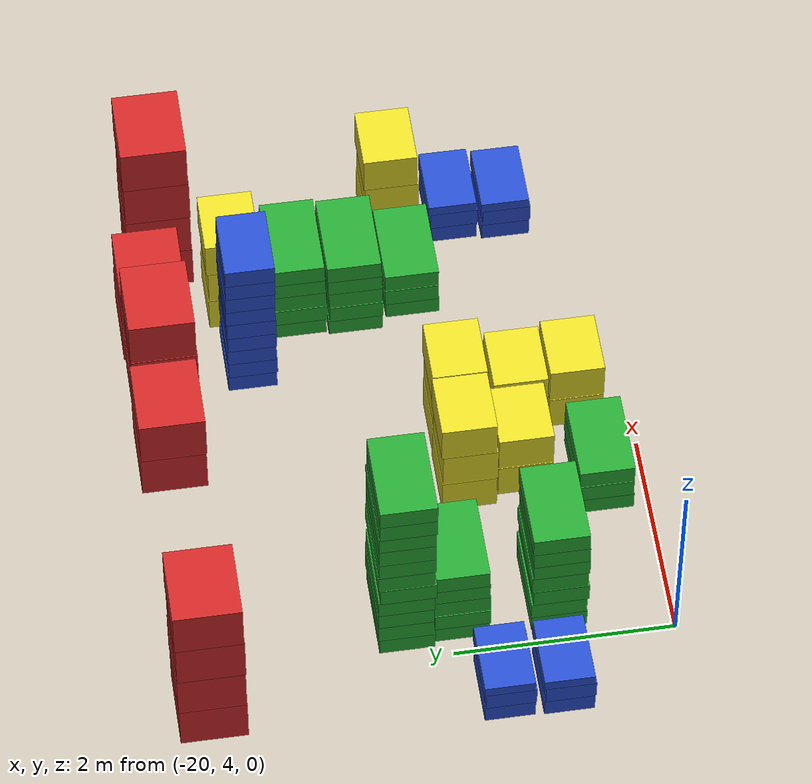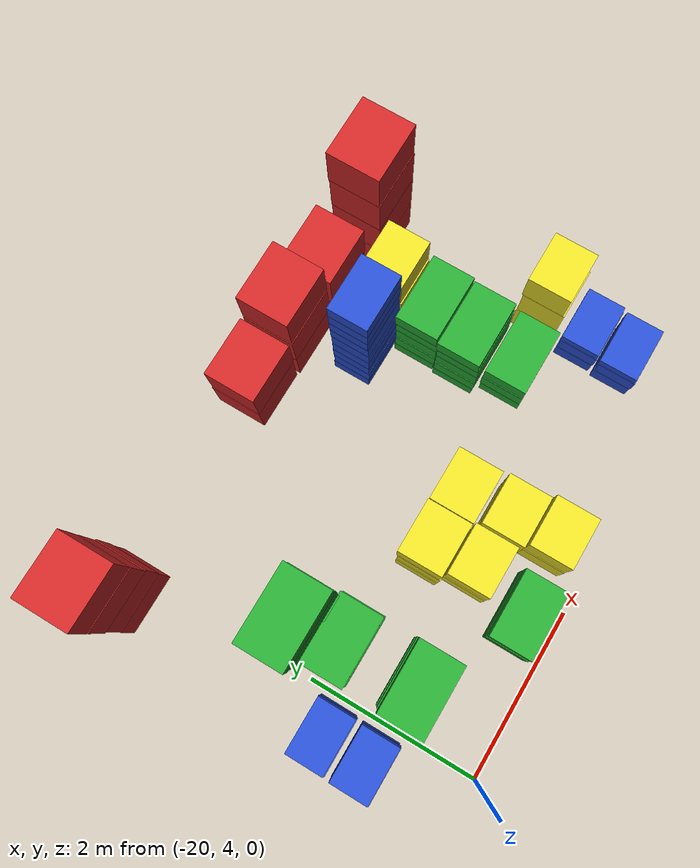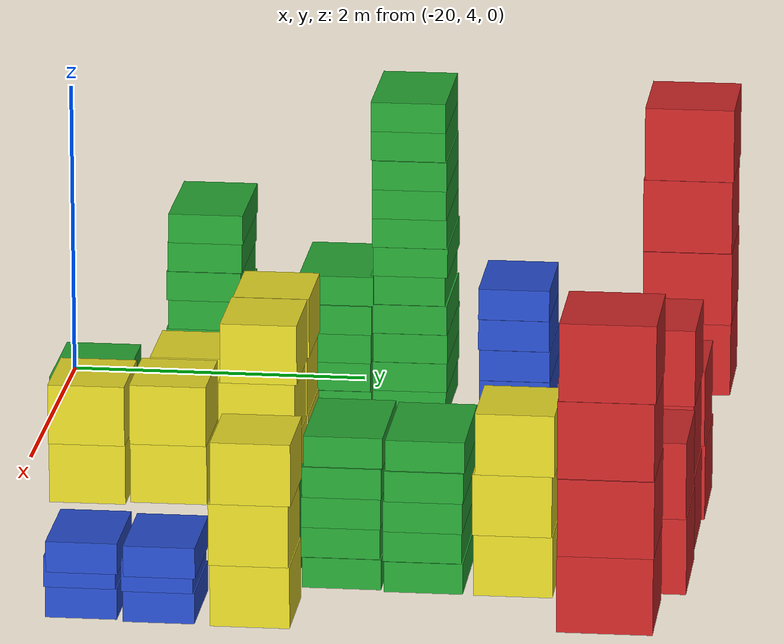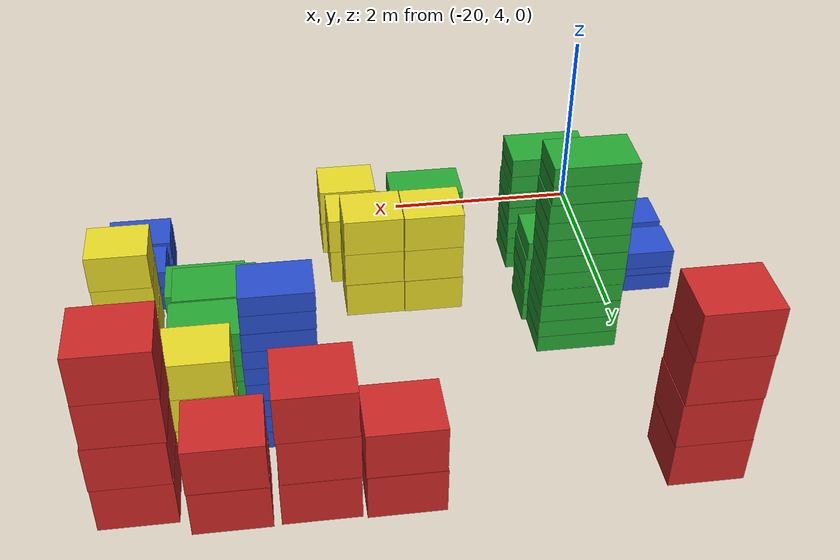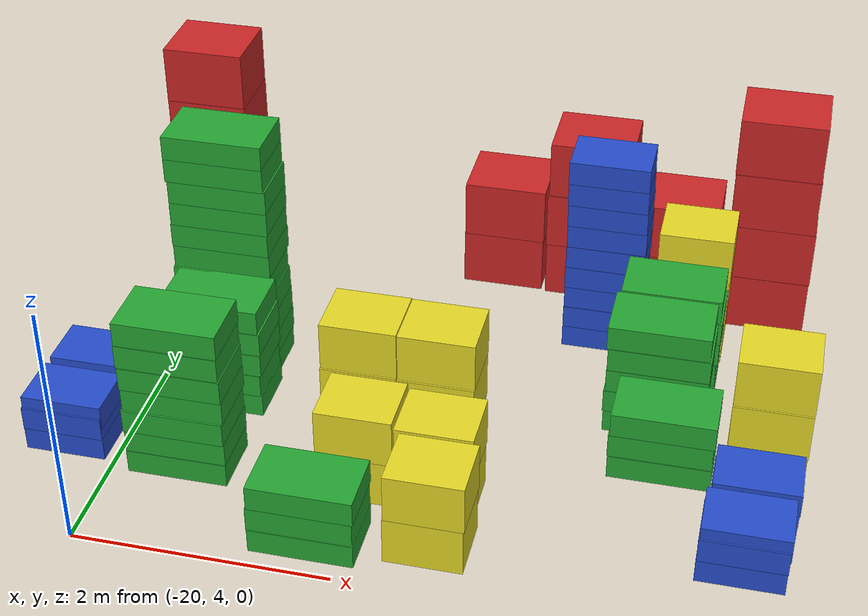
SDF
<sdf version="1.6">
 <world name="default">
  <include><uri>model://sun</uri></include>
  <model name="baggage_B_x3_5">
   <model name="baggage_B_0">
    <static>1</static>
    <link name="link">
     <collision name="collision"><geometry><box><size>0.65 0.45 0.2</size></box></geometry></collision>
     <visual name="visual">
      <geometry><box><size>0.65 0.45 0.2</size></box></geometry>
      <material>
       <script><uri>file://media/materials/scripts/gazebo.material</uri><name>Gazebo/Blue</name></script>
      </material>
     </visual>
    </link>
    <pose>0 0 0.1 0 -0 0</pose>
   </model>
   <model name="baggage_B_1">
    <static>1</static>
    <link name="link">
     <collision name="collision"><geometry><box><size>0.65 0.45 0.2</size></box></geometry></collision>
     <visual name="visual">
      <geometry><box><size>0.65 0.45 0.2</size></box></geometry>
      <material>
       <script><uri>file://media/materials/scripts/gazebo.material</uri><name>Gazebo/Blue</name></script>
      </material>
     </visual>
    </link>
    <pose>0.0028 -0.0086 0.3 0 -0 0</pose>
   </model>
   <model name="baggage_B_2">
    <static>1</static>
    <link name="link">
     <collision name="collision"><geometry><box><size>0.65 0.45 0.2</size></box></geometry></collision>
     <visual name="visual">
      <geometry><box><size>0.65 0.45 0.2</size></box></geometry>
      <material>
       <script><uri>file://media/materials/scripts/gazebo.material</uri><name>Gazebo/Blue</name></script>
      </material>
     </visual>
    </link>
    <pose>0.0092 0.006 0.4 0 -0 0</pose>
   </model>
   <pose>-15.1399 4.80526 0 0 -0 0</pose>
  </model>
  <model name="baggage_B_x3_6">
   <model name="baggage_B_0">
    <static>1</static>
    <link name="link">
     <collision name="collision"><geometry><box><size>0.65 0.45 0.2</size></box></geometry></collision>
     <visual name="visual">
      <geometry><box><size>0.65 0.45 0.2</size></box></geometry>
      <material>
       <script><uri>file://media/materials/scripts/gazebo.material</uri><name>Gazebo/Blue</name></script>
      </material>
     </visual>
    </link>
    <pose>0 0 0.1 0 -0 0</pose>
   </model>
   <model name="baggage_B_1">
    <static>1</static>
    <link name="link">
     <collision name="collision"><geometry><box><size>0.65 0.45 0.2</size></box></geometry></collision>
     <visual name="visual">
      <geometry><box><size>0.65 0.45 0.2</size></box></geometry>
      <material>
       <script><uri>file://media/materials/scripts/gazebo.material</uri><name>Gazebo/Blue</name></script>
      </material>
     </visual>
    </link>
    <pose>0.0028 -0.0086 0.3 0 -0 0</pose>
   </model>
   <model name="baggage_B_2">
    <static>1</static>
    <link name="link">
     <collision name="collision"><geometry><box><size>0.65 0.45 0.2</size></box></geometry></collision>
     <visual name="visual">
      <geometry><box><size>0.65 0.45 0.2</size></box></geometry>
      <material>
       <script><uri>file://media/materials/scripts/gazebo.material</uri><name>Gazebo/Blue</name></script>
      </material>
     </visual>
    </link>
    <pose>0.0092 0.006 0.4 0 -0 0</pose>
   </model>
   <pose>-15.1067 5.2972 0 0 -0 0</pose>
  </model>
  <model name="baggage_D_x3_3">
   <model name="baggage_D_0">
    <static>1</static>
    <link name="link">
     <collision name="collision"><geometry><box><size>0.8 0.5 0.2</size></box></geometry></collision>
     <visual name="visual">
      <geometry><box><size>0.8 0.5 0.2</size></box></geometry>
      <material>
       <script><uri>file://media/materials/scripts/gazebo.material</uri><name>Gazebo/Green</name></script>
      </material>
     </visual>
    </link>
    <pose>0 0 0.1 0 -0 0</pose>
   </model>
   <model name="baggage_D_1">
    <static>1</static>
    <link name="link">
     <collision name="collision"><geometry><box><size>0.8 0.5 0.2</size></box></geometry></collision>
     <visual name="visual">
      <geometry><box><size>0.8 0.5 0.2</size></box></geometry>
      <material>
       <script><uri>file://media/materials/scripts/gazebo.material</uri><name>Gazebo/Green</name></script>
      </material>
     </visual>
    </link>
    <pose>-0.0056 0.0083 0.3 0 -0 0</pose>
   </model>
   <model name="baggage_D_2">
    <static>1</static>
    <link name="link">
     <collision name="collision"><geometry><box><size>0.8 0.5 0.2</size></box></geometry></collision>
     <visual name="visual">
      <geometry><box><size>0.8 0.5 0.2</size></box></geometry>
      <material>
       <script><uri>file://media/materials/scripts/gazebo.material</uri><name>Gazebo/Green</name></script>
      </material>
     </visual>
    </link>
    <pose>0.0053 0.0057 0.5 0 -0 0</pose>
   </model>
   <pose>-15.8439 5.80478 0 0 -0 0</pose>
  </model>
  <model name="baggage_D_x5_2">
   <model name="baggage_D_0">
    <static>1</static>
    <link name="link">
     <collision name="collision"><geometry><box><size>0.8 0.5 0.2</size></box></geometry></collision>
     <visual name="visual">
      <geometry><box><size>0.8 0.5 0.2</size></box></geometry>
      <material>
       <script><uri>file://media/materials/scripts/gazebo.material</uri><name>Gazebo/Green</name></script>
      </material>
     </visual>
    </link>
    <pose>0 0 0.1 0 -0 0</pose>
   </model>
   <model name="baggage_D_1">
    <static>1</static>
    <link name="link">
     <collision name="collision"><geometry><box><size>0.8 0.5 0.2</size></box></geometry></collision>
     <visual name="visual">
      <geometry><box><size>0.8 0.5 0.2</size></box></geometry>
      <material>
       <script><uri>file://media/materials/scripts/gazebo.material</uri><name>Gazebo/Green</name></script>
      </material>
     </visual>
    </link>
    <pose>-0.0065 -0.0092 0.3 0 -0 0</pose>
   </model>
   <model name="baggage_D_2">
    <static>1</static>
    <link name="link">
     <collision name="collision"><geometry><box><size>0.8 0.5 0.2</size></box></geometry></collision>
     <visual name="visual">
      <geometry><box><size>0.8 0.5 0.2</size></box></geometry>
      <material>
       <script><uri>file://media/materials/scripts/gazebo.material</uri><name>Gazebo/Green</name></script>
      </material>
     </visual>
    </link>
    <pose>0.005 -0.0052 0.5 0 -0 0</pose>
   </model>
   <model name="baggage_D_3">
    <static>1</static>
    <link name="link">
     <collision name="collision"><geometry><box><size>0.8 0.5 0.2</size></box></geometry></collision>
     <visual name="visual">
      <geometry><box><size>0.8 0.5 0.2</size></box></geometry>
      <material>
       <script><uri>file://media/materials/scripts/gazebo.material</uri><name>Gazebo/Green</name></script>
      </material>
     </visual>
    </link>
    <pose>0.0074 0.0002 0.7 0 -0 0</pose>
   </model>
   <model name="baggage_D_4">
    <static>1</static>
    <link name="link">
     <collision name="collision"><geometry><box><size>0.8 0.5 0.2</size></box></geometry></collision>
     <visual name="visual">
      <geometry><box><size>0.8 0.5 0.2</size></box></geometry>
      <material>
       <script><uri>file://media/materials/scripts/gazebo.material</uri><name>Gazebo/Green</name></script>
      </material>
     </visual>
    </link>
    <pose>-0.006 0.0081 0.9 0 -0 0</pose>
   </model>
   <pose>-15.9594 6.35522 0 0 -0 0</pose>
  </model>
  <model name="baggage_D_x5_3">
   <model name="baggage_D_0">
    <static>1</static>
    <link name="link">
     <collision name="collision"><geometry><box><size>0.8 0.5 0.2</size></box></geometry></collision>
     <visual name="visual">
      <geometry><box><size>0.8 0.5 0.2</size></box></geometry>
      <material>
       <script><uri>file://media/materials/scripts/gazebo.material</uri><name>Gazebo/Green</name></script>
      </material>
     </visual>
    </link>
    <pose>0 0 0.1 0 -0 0</pose>
   </model>
   <model name="baggage_D_1">
    <static>1</static>
    <link name="link">
     <collision name="collision"><geometry><box><size>0.8 0.5 0.2</size></box></geometry></collision>
     <visual name="visual">
      <geometry><box><size>0.8 0.5 0.2</size></box></geometry>
      <material>
       <script><uri>file://media/materials/scripts/gazebo.material</uri><name>Gazebo/Green</name></script>
      </material>
     </visual>
    </link>
    <pose>-0.0065 -0.0092 0.3 0 -0 0</pose>
   </model>
   <model name="baggage_D_2">
    <static>1</static>
    <link name="link">
     <collision name="collision"><geometry><box><size>0.8 0.5 0.2</size></box></geometry></collision>
     <visual name="visual">
      <geometry><box><size>0.8 0.5 0.2</size></box></geometry>
      <material>
       <script><uri>file://media/materials/scripts/gazebo.material</uri><name>Gazebo/Green</name></script>
      </material>
     </visual>
    </link>
    <pose>0.005 -0.0052 0.5 0 -0 0</pose>
   </model>
   <model name="baggage_D_3">
    <static>1</static>
    <link name="link">
     <collision name="collision"><geometry><box><size>0.8 0.5 0.2</size></box></geometry></collision>
     <visual name="visual">
      <geometry><box><size>0.8 0.5 0.2</size></box></geometry>
      <material>
       <script><uri>file://media/materials/scripts/gazebo.material</uri><name>Gazebo/Green</name></script>
      </material>
     </visual>
    </link>
    <pose>0.0074 0.0002 0.7 0 -0 0</pose>
   </model>
   <model name="baggage_D_4">
    <static>1</static>
    <link name="link">
     <collision name="collision"><geometry><box><size>0.8 0.5 0.2</size></box></geometry></collision>
     <visual name="visual">
      <geometry><box><size>0.8 0.5 0.2</size></box></geometry>
      <material>
       <script><uri>file://media/materials/scripts/gazebo.material</uri><name>Gazebo/Green</name></script>
      </material>
     </visual>
    </link>
    <pose>-0.006 0.0081 0.9 0 -0 0</pose>
   </model>
   <pose>-15.9296 6.87587 0 0 -0 0</pose>
  </model>
  <model name="baggage_C_x3_4">
   <model name="baggage_C_0">
    <static>1</static>
    <link name="link">
     <collision name="collision"><geometry><box><size>0.6 0.5 0.4</size></box></geometry></collision>
     <visual name="visual">
      <geometry><box><size>0.6 0.5 0.4</size></box></geometry>
      <material>
       <script><uri>file://media/materials/scripts/gazebo.material</uri><name>Gazebo/Yellow</name></script>
      </material>
     </visual>
    </link>
    <pose>0 0 0.2 0 -0 0</pose>
   </model>
   <model name="baggage_C_1">
    <static>1</static>
    <link name="link">
     <collision name="collision"><geometry><box><size>0.6 0.5 0.4</size></box></geometry></collision>
     <visual name="visual">
      <geometry><box><size>0.6 0.5 0.4</size></box></geometry>
      <material>
       <script><uri>file://media/materials/scripts/gazebo.material</uri><name>Gazebo/Yellow</name></script>
      </material>
     </visual>
    </link>
    <pose>0.0062 -0.0069 0.6 0 -0 0</pose>
   </model>
   <model name="baggage_C_2">
    <static>1</static>
    <link name="link">
     <collision name="collision"><geometry><box><size>0.6 0.5 0.4</size></box></geometry></collision>
     <visual name="visual">
      <geometry><box><size>0.6 0.5 0.4</size></box></geometry>
      <material>
       <script><uri>file://media/materials/scripts/gazebo.material</uri><name>Gazebo/Yellow</name></script>
      </material>
     </visual>
    </link>
    <pose>0.0089 0.0083 1 0 -0 0</pose>
   </model>
   <pose>-15.8229 7.44258 0 0 -0 0</pose>
  </model>
  <model name="baggage_C_x3_5">
   <model name="baggage_C_0">
    <static>1</static>
    <link name="link">
     <collision name="collision"><geometry><box><size>0.6 0.5 0.4</size></box></geometry></collision>
     <visual name="visual">
      <geometry><box><size>0.6 0.5 0.4</size></box></geometry>
      <material>
       <script><uri>file://media/materials/scripts/gazebo.material</uri><name>Gazebo/Yellow</name></script>
      </material>
     </visual>
    </link>
    <pose>0 0 0.2 0 -0 0</pose>
   </model>
   <model name="baggage_C_1">
    <static>1</static>
    <link name="link">
     <collision name="collision"><geometry><box><size>0.6 0.5 0.4</size></box></geometry></collision>
     <visual name="visual">
      <geometry><box><size>0.6 0.5 0.4</size></box></geometry>
      <material>
       <script><uri>file://media/materials/scripts/gazebo.material</uri><name>Gazebo/Yellow</name></script>
      </material>
     </visual>
    </link>
    <pose>0.0062 -0.0069 0.6 0 -0 0</pose>
   </model>
   <model name="baggage_C_2">
    <static>1</static>
    <link name="link">
     <collision name="collision"><geometry><box><size>0.6 0.5 0.4</size></box></geometry></collision>
     <visual name="visual">
      <geometry><box><size>0.6 0.5 0.4</size></box></geometry>
      <material>
       <script><uri>file://media/materials/scripts/gazebo.material</uri><name>Gazebo/Yellow</name></script>
      </material>
     </visual>
    </link>
    <pose>0.0089 0.0083 1 0 -0 0</pose>
   </model>
   <pose>-15.0595 5.8716 0 0 -0 0</pose>
  </model>
  <model name="baggage_A_x4_4">
   <model name="baggage_A_0">
    <static>1</static>
    <link name="link">
     <collision name="collision"><geometry><box><size>0.7 0.6 0.5</size></box></geometry></collision>
     <visual name="visual">
      <geometry><box><size>0.7 0.6 0.5</size></box></geometry>
      <material>
       <script><uri>file://media/materials/scripts/gazebo.material</uri><name>Gazebo/Red</name></script>
      </material>
     </visual>
    </link>
    <pose>0 0 0.25 0 -0 0</pose>
   </model>
   <model name="baggage_A_1">
    <static>1</static>
    <link name="link">
     <collision name="collision"><geometry><box><size>0.7 0.6 0.5</size></box></geometry></collision>
     <visual name="visual">
      <geometry><box><size>0.7 0.6 0.5</size></box></geometry>
      <material>
       <script><uri>file://media/materials/scripts/gazebo.material</uri><name>Gazebo/Red</name></script>
      </material>
     </visual>
    </link>
    <pose>0.0053 0.0033 0.75 0 -0 0</pose>
   </model>
   <model name="baggage_A_2">
    <static>1</static>
    <link name="link">
     <collision name="collision"><geometry><box><size>0.7 0.6 0.5</size></box></geometry></collision>
     <visual name="visual">
      <geometry><box><size>0.7 0.6 0.5</size></box></geometry>
      <material>
       <script><uri>file://media/materials/scripts/gazebo.material</uri><name>Gazebo/Red</name></script>
      </material>
     </visual>
    </link>
    <pose>-0.0056 -0.0003 1.25 0 -0 0</pose>
   </model>
   <model name="baggage_A_3">
    <static>1</static>
    <link name="link">
     <collision name="collision"><geometry><box><size>0.7 0.6 0.5</size></box></geometry></collision>
     <visual name="visual">
      <geometry><box><size>0.7 0.6 0.5</size></box></geometry>
      <material>
       <script><uri>file://media/materials/scripts/gazebo.material</uri><name>Gazebo/Red</name></script>
      </material>
     </visual>
    </link>
    <pose>-0.0098 0.0065 1.75 0 -0 0</pose>
   </model>
   <pose>-15.2258 8.07394 0 0 -0 0</pose>
  </model>
  <model name="baggage_D_x7_1">
   <model name="baggage_D_0">
    <static>1</static>
    <link name="link">
     <collision name="collision"><geometry><box><size>0.8 0.5 0.2</size></box></geometry></collision>
     <visual name="visual">
      <geometry><box><size>0.8 0.5 0.2</size></box></geometry>
      <material>
       <script><uri>file://media/materials/scripts/gazebo.material</uri><name>Gazebo/Green</name></script>
      </material>
     </visual>
    </link>
    <pose>0 0 0.1 0 -0 0</pose>
   </model>
   <model name="baggage_D_1">
    <static>1</static>
    <link name="link">
     <collision name="collision"><geometry><box><size>0.8 0.5 0.2</size></box></geometry></collision>
     <visual name="visual">
      <geometry><box><size>0.8 0.5 0.2</size></box></geometry>
      <material>
       <script><uri>file://media/materials/scripts/gazebo.material</uri><name>Gazebo/Green</name></script>
      </material>
     </visual>
    </link>
    <pose>0.0009 0.0063 0.3 0 -0 0</pose>
   </model>
   <model name="baggage_D_2">
    <static>1</static>
    <link name="link">
     <collision name="collision"><geometry><box><size>0.8 0.5 0.2</size></box></geometry></collision>
     <visual name="visual">
      <geometry><box><size>0.8 0.5 0.2</size></box></geometry>
      <material>
       <script><uri>file://media/materials/scripts/gazebo.material</uri><name>Gazebo/Green</name></script>
      </material>
     </visual>
    </link>
    <pose>0.0011 -0.0098 0.5 0 -0 0</pose>
   </model>
   <model name="baggage_D_3">
    <static>1</static>
    <link name="link">
     <collision name="collision"><geometry><box><size>0.8 0.5 0.2</size></box></geometry></collision>
     <visual name="visual">
      <geometry><box><size>0.8 0.5 0.2</size></box></geometry>
      <material>
       <script><uri>file://media/materials/scripts/gazebo.material</uri><name>Gazebo/Green</name></script>
      </material>
     </visual>
    </link>
    <pose>0.0089 0.0055 0.7 0 -0 0</pose>
   </model>
   <model name="baggage_D_4">
    <static>1</static>
    <link name="link">
     <collision name="collision"><geometry><box><size>0.8 0.5 0.2</size></box></geometry></collision>
     <visual name="visual">
      <geometry><box><size>0.8 0.5 0.2</size></box></geometry>
      <material>
       <script><uri>file://media/materials/scripts/gazebo.material</uri><name>Gazebo/Green</name></script>
      </material>
     </visual>
    </link>
    <pose>0.009 -0.0056 0.9 0 -0 0</pose>
   </model>
   <model name="baggage_D_5">
    <static>1</static>
    <link name="link">
     <collision name="collision"><geometry><box><size>0.8 0.5 0.2</size></box></geometry></collision>
     <visual name="visual">
      <geometry><box><size>0.8 0.5 0.2</size></box></geometry>
      <material>
       <script><uri>file://media/materials/scripts/gazebo.material</uri><name>Gazebo/Green</name></script>
      </material>
     </visual>
    </link>
    <pose>0.0001 0.0013 1.1 0 -0 0</pose>
   </model>
   <model name="baggage_D_6">
    <static>1</static>
    <link name="link">
     <collision name="collision"><geometry><box><size>0.8 0.5 0.2</size></box></geometry></collision>
     <visual name="visual">
      <geometry><box><size>0.8 0.5 0.2</size></box></geometry>
      <material>
       <script><uri>file://media/materials/scripts/gazebo.material</uri><name>Gazebo/Green</name></script>
      </material>
     </visual>
    </link>
    <pose>0.0019 0.009 1.3 0 -0 0</pose>
   </model>
   <pose>-19.453 5.02846 0 0 -0 0</pose>
  </model>
  <model name="baggage_D_x5_4">
   <model name="baggage_D_0">
    <static>1</static>
    <link name="link">
     <collision name="collision"><geometry><box><size>0.8 0.5 0.2</size></box></geometry></collision>
     <visual name="visual">
      <geometry><box><size>0.8 0.5 0.2</size></box></geometry>
      <material>
       <script><uri>file://media/materials/scripts/gazebo.material</uri><name>Gazebo/Green</name></script>
      </material>
     </visual>
    </link>
    <pose>0 0 0.1 0 -0 0</pose>
   </model>
   <model name="baggage_D_1">
    <static>1</static>
    <link name="link">
     <collision name="collision"><geometry><box><size>0.8 0.5 0.2</size></box></geometry></collision>
     <visual name="visual">
      <geometry><box><size>0.8 0.5 0.2</size></box></geometry>
      <material>
       <script><uri>file://media/materials/scripts/gazebo.material</uri><name>Gazebo/Green</name></script>
      </material>
     </visual>
    </link>
    <pose>-0.0065 -0.0092 0.3 0 -0 0</pose>
   </model>
   <model name="baggage_D_2">
    <static>1</static>
    <link name="link">
     <collision name="collision"><geometry><box><size>0.8 0.5 0.2</size></box></geometry></collision>
     <visual name="visual">
      <geometry><box><size>0.8 0.5 0.2</size></box></geometry>
      <material>
       <script><uri>file://media/materials/scripts/gazebo.material</uri><name>Gazebo/Green</name></script>
      </material>
     </visual>
    </link>
    <pose>0.005 -0.0052 0.5 0 -0 0</pose>
   </model>
   <model name="baggage_D_3">
    <static>1</static>
    <link name="link">
     <collision name="collision"><geometry><box><size>0.8 0.5 0.2</size></box></geometry></collision>
     <visual name="visual">
      <geometry><box><size>0.8 0.5 0.2</size></box></geometry>
      <material>
       <script><uri>file://media/materials/scripts/gazebo.material</uri><name>Gazebo/Green</name></script>
      </material>
     </visual>
    </link>
    <pose>0.0074 0.0002 0.7 0 -0 0</pose>
   </model>
   <model name="baggage_D_4">
    <static>1</static>
    <link name="link">
     <collision name="collision"><geometry><box><size>0.8 0.5 0.2</size></box></geometry></collision>
     <visual name="visual">
      <geometry><box><size>0.8 0.5 0.2</size></box></geometry>
      <material>
       <script><uri>file://media/materials/scripts/gazebo.material</uri><name>Gazebo/Green</name></script>
      </material>
     </visual>
    </link>
    <pose>-0.006 0.0081 0.9 0 -0 0</pose>
   </model>
   <pose>-19.4459 5.90571 0 0 -0 0</pose>
  </model>
  <model name="baggage_D_x11_1">
   <model name="baggage_D_0">
    <static>1</static>
    <link name="link">
     <collision name="collision"><geometry><box><size>0.8 0.5 0.2</size></box></geometry></collision>
     <visual name="visual">
      <geometry><box><size>0.8 0.5 0.2</size></box></geometry>
      <material>
       <script><uri>file://media/materials/scripts/gazebo.material</uri><name>Gazebo/Green</name></script>
      </material>
     </visual>
    </link>
    <pose>0 0 0.1 0 -0 0</pose>
   </model>
   <model name="baggage_D_1">
    <static>1</static>
    <link name="link">
     <collision name="collision"><geometry><box><size>0.8 0.5 0.2</size></box></geometry></collision>
     <visual name="visual">
      <geometry><box><size>0.8 0.5 0.2</size></box></geometry>
      <material>
       <script><uri>file://media/materials/scripts/gazebo.material</uri><name>Gazebo/Green</name></script>
      </material>
     </visual>
    </link>
    <pose>0.0069 0.0078 0.3 0 -0 0</pose>
   </model>
   <model name="baggage_D_2">
    <static>1</static>
    <link name="link">
     <collision name="collision"><geometry><box><size>0.8 0.5 0.2</size></box></geometry></collision>
     <visual name="visual">
      <geometry><box><size>0.8 0.5 0.2</size></box></geometry>
      <material>
       <script><uri>file://media/materials/scripts/gazebo.material</uri><name>Gazebo/Green</name></script>
      </material>
     </visual>
    </link>
    <pose>0.0035 0.01 0.5 0 -0 0</pose>
   </model>
   <model name="baggage_D_3">
    <static>1</static>
    <link name="link">
     <collision name="collision"><geometry><box><size>0.8 0.5 0.2</size></box></geometry></collision>
     <visual name="visual">
      <geometry><box><size>0.8 0.5 0.2</size></box></geometry>
      <material>
       <script><uri>file://media/materials/scripts/gazebo.material</uri><name>Gazebo/Green</name></script>
      </material>
     </visual>
    </link>
    <pose>0.0009 0.0056 0.7 0 -0 0</pose>
   </model>
   <model name="baggage_D_4">
    <static>1</static>
    <link name="link">
     <collision name="collision"><geometry><box><size>0.8 0.5 0.2</size></box></geometry></collision>
     <visual name="visual">
      <geometry><box><size>0.8 0.5 0.2</size></box></geometry>
      <material>
       <script><uri>file://media/materials/scripts/gazebo.material</uri><name>Gazebo/Green</name></script>
      </material>
     </visual>
    </link>
    <pose>-0.0074 -0.0079 0.9 0 -0 0</pose>
   </model>
   <model name="baggage_D_5">
    <static>1</static>
    <link name="link">
     <collision name="collision"><geometry><box><size>0.8 0.5 0.2</size></box></geometry></collision>
     <visual name="visual">
      <geometry><box><size>0.8 0.5 0.2</size></box></geometry>
      <material>
       <script><uri>file://media/materials/scripts/gazebo.material</uri><name>Gazebo/Green</name></script>
      </material>
     </visual>
    </link>
    <pose>0.0011 0.0099 1.1 0 -0 0</pose>
   </model>
   <model name="baggage_D_6">
    <static>1</static>
    <link name="link">
     <collision name="collision"><geometry><box><size>0.8 0.5 0.2</size></box></geometry></collision>
     <visual name="visual">
      <geometry><box><size>0.8 0.5 0.2</size></box></geometry>
      <material>
       <script><uri>file://media/materials/scripts/gazebo.material</uri><name>Gazebo/Green</name></script>
      </material>
     </visual>
    </link>
    <pose>-0.0009 0.0022 1.3 0 -0 0</pose>
   </model>
   <model name="baggage_D_7">
    <static>1</static>
    <link name="link">
     <collision name="collision"><geometry><box><size>0.8 0.5 0.2</size></box></geometry></collision>
     <visual name="visual">
      <geometry><box><size>0.8 0.5 0.2</size></box></geometry>
      <material>
       <script><uri>file://media/materials/scripts/gazebo.material</uri><name>Gazebo/Green</name></script>
      </material>
     </visual>
    </link>
    <pose>0.0046 0.0014 1.5 0 -0 0</pose>
   </model>
   <model name="baggage_D_8">
    <static>1</static>
    <link name="link">
     <collision name="collision"><geometry><box><size>0.8 0.5 0.2</size></box></geometry></collision>
     <visual name="visual">
      <geometry><box><size>0.8 0.5 0.2</size></box></geometry>
      <material>
       <script><uri>file://media/materials/scripts/gazebo.material</uri><name>Gazebo/Green</name></script>
      </material>
     </visual>
    </link>
    <pose>0.0052 0.0021 1.7 0 -0 0</pose>
   </model>
   <model name="baggage_D_9">
    <static>1</static>
    <link name="link">
     <collision name="collision"><geometry><box><size>0.8 0.5 0.2</size></box></geometry></collision>
     <visual name="visual">
      <geometry><box><size>0.8 0.5 0.2</size></box></geometry>
      <material>
       <script><uri>file://media/materials/scripts/gazebo.material</uri><name>Gazebo/Green</name></script>
      </material>
     </visual>
    </link>
    <pose>-0.0068 -0.0054 1.9 0 -0 0</pose>
   </model>
   <model name="baggage_D_10">
    <static>1</static>
    <link name="link">
     <collision name="collision"><geometry><box><size>0.8 0.5 0.2</size></box></geometry></collision>
     <visual name="visual">
      <geometry><box><size>0.8 0.5 0.2</size></box></geometry>
      <material>
       <script><uri>file://media/materials/scripts/gazebo.material</uri><name>Gazebo/Green</name></script>
      </material>
     </visual>
    </link>
    <pose>-0.0064 -0.0067 2.1 0 -0 0</pose>
   </model>
   <pose>-19.4962 6.40029 0 0 -0 0</pose>
  </model>
  <model name="baggage_B_x3_8">
   <model name="baggage_B_0">
    <static>1</static>
    <link name="link">
     <collision name="collision"><geometry><box><size>0.65 0.45 0.2</size></box></geometry></collision>
     <visual name="visual">
      <geometry><box><size>0.65 0.45 0.2</size></box></geometry>
      <material>
       <script><uri>file://media/materials/scripts/gazebo.material</uri><name>Gazebo/Blue</name></script>
      </material>
     </visual>
    </link>
    <pose>0 0 0.1 0 -0 0</pose>
   </model>
   <model name="baggage_B_1">
    <static>1</static>
    <link name="link">
     <collision name="collision"><geometry><box><size>0.65 0.45 0.2</size></box></geometry></collision>
     <visual name="visual">
      <geometry><box><size>0.65 0.45 0.2</size></box></geometry>
      <material>
       <script><uri>file://media/materials/scripts/gazebo.material</uri><name>Gazebo/Blue</name></script>
      </material>
     </visual>
    </link>
    <pose>0.0028 -0.0086 0.3 0 -0 0</pose>
   </model>
   <model name="baggage_B_2">
    <static>1</static>
    <link name="link">
     <collision name="collision"><geometry><box><size>0.65 0.45 0.2</size></box></geometry></collision>
     <visual name="visual">
      <geometry><box><size>0.65 0.45 0.2</size></box></geometry>
      <material>
       <script><uri>file://media/materials/scripts/gazebo.material</uri><name>Gazebo/Blue</name></script>
      </material>
     </visual>
    </link>
    <pose>0.0092 0.006 0.4 0 -0 0</pose>
   </model>
   <pose>-20.4083 5.08323 0 0 -0 0</pose>
  </model>
  <model name="baggage_B_x3_9">
   <model name="baggage_B_0">
    <static>1</static>
    <link name="link">
     <collision name="collision"><geometry><box><size>0.65 0.45 0.2</size></box></geometry></collision>
     <visual name="visual">
      <geometry><box><size>0.65 0.45 0.2</size></box></geometry>
      <material>
       <script><uri>file://media/materials/scripts/gazebo.material</uri><name>Gazebo/Blue</name></script>
      </material>
     </visual>
    </link>
    <pose>0 0 0.1 0 -0 0</pose>
   </model>
   <model name="baggage_B_1">
    <static>1</static>
    <link name="link">
     <collision name="collision"><geometry><box><size>0.65 0.45 0.2</size></box></geometry></collision>
     <visual name="visual">
      <geometry><box><size>0.65 0.45 0.2</size></box></geometry>
      <material>
       <script><uri>file://media/materials/scripts/gazebo.material</uri><name>Gazebo/Blue</name></script>
      </material>
     </visual>
    </link>
    <pose>0.0028 -0.0086 0.3 0 -0 0</pose>
   </model>
   <model name="baggage_B_2">
    <static>1</static>
    <link name="link">
     <collision name="collision"><geometry><box><size>0.65 0.45 0.2</size></box></geometry></collision>
     <visual name="visual">
      <geometry><box><size>0.65 0.45 0.2</size></box></geometry>
      <material>
       <script><uri>file://media/materials/scripts/gazebo.material</uri><name>Gazebo/Blue</name></script>
      </material>
     </visual>
    </link>
    <pose>0.0092 0.006 0.4 0 -0 0</pose>
   </model>
   <pose>-20.3981 5.61061 0 0 -0 0</pose>
  </model>
  <model name="baggage_A_x4_5">
   <model name="baggage_A_0">
    <static>1</static>
    <link name="link">
     <collision name="collision"><geometry><box><size>0.7 0.6 0.5</size></box></geometry></collision>
     <visual name="visual">
      <geometry><box><size>0.7 0.6 0.5</size></box></geometry>
      <material>
       <script><uri>file://media/materials/scripts/gazebo.material</uri><name>Gazebo/Red</name></script>
      </material>
     </visual>
    </link>
    <pose>0 0 0.25 0 -0 0</pose>
   </model>
   <model name="baggage_A_1">
    <static>1</static>
    <link name="link">
     <collision name="collision"><geometry><box><size>0.7 0.6 0.5</size></box></geometry></collision>
     <visual name="visual">
      <geometry><box><size>0.7 0.6 0.5</size></box></geometry>
      <material>
       <script><uri>file://media/materials/scripts/gazebo.material</uri><name>Gazebo/Red</name></script>
      </material>
     </visual>
    </link>
    <pose>0.0053 0.0033 0.75 0 -0 0</pose>
   </model>
   <model name="baggage_A_2">
    <static>1</static>
    <link name="link">
     <collision name="collision"><geometry><box><size>0.7 0.6 0.5</size></box></geometry></collision>
     <visual name="visual">
      <geometry><box><size>0.7 0.6 0.5</size></box></geometry>
      <material>
       <script><uri>file://media/materials/scripts/gazebo.material</uri><name>Gazebo/Red</name></script>
      </material>
     </visual>
    </link>
    <pose>-0.0056 -0.0003 1.25 0 -0 0</pose>
   </model>
   <model name="baggage_A_3">
    <static>1</static>
    <link name="link">
     <collision name="collision"><geometry><box><size>0.7 0.6 0.5</size></box></geometry></collision>
     <visual name="visual">
      <geometry><box><size>0.7 0.6 0.5</size></box></geometry>
      <material>
       <script><uri>file://media/materials/scripts/gazebo.material</uri><name>Gazebo/Red</name></script>
      </material>
     </visual>
    </link>
    <pose>-0.0098 0.0065 1.75 0 -0 0</pose>
   </model>
   <pose>-20.2142 8.20869 0 0 -0 0</pose>
  </model>
  <model name="baggage_B_x9_3">
   <model name="baggage_B_0">
    <static>1</static>
    <link name="link">
     <collision name="collision"><geometry><box><size>0.65 0.45 0.2</size></box></geometry></collision>
     <visual name="visual">
      <geometry><box><size>0.65 0.45 0.2</size></box></geometry>
      <material>
       <script><uri>file://media/materials/scripts/gazebo.material</uri><name>Gazebo/Blue</name></script>
      </material>
     </visual>
    </link>
    <pose>0 0 0.1 0 -0 0</pose>
   </model>
   <model name="baggage_B_1">
    <static>1</static>
    <link name="link">
     <collision name="collision"><geometry><box><size>0.65 0.45 0.2</size></box></geometry></collision>
     <visual name="visual">
      <geometry><box><size>0.65 0.45 0.2</size></box></geometry>
      <material>
       <script><uri>file://media/materials/scripts/gazebo.material</uri><name>Gazebo/Blue</name></script>
      </material>
     </visual>
    </link>
    <pose>0.001 -0.0095 0.3 0 -0 0</pose>
   </model>
   <model name="baggage_B_2">
    <static>1</static>
    <link name="link">
     <collision name="collision"><geometry><box><size>0.65 0.45 0.2</size></box></geometry></collision>
     <visual name="visual">
      <geometry><box><size>0.65 0.45 0.2</size></box></geometry>
      <material>
       <script><uri>file://media/materials/scripts/gazebo.material</uri><name>Gazebo/Blue</name></script>
      </material>
     </visual>
    </link>
    <pose>0.0028 -0.0029 0.5 0 -0 0</pose>
   </model>
   <model name="baggage_B_3">
    <static>1</static>
    <link name="link">
     <collision name="collision"><geometry><box><size>0.65 0.45 0.2</size></box></geometry></collision>
     <visual name="visual">
      <geometry><box><size>0.65 0.45 0.2</size></box></geometry>
      <material>
       <script><uri>file://media/materials/scripts/gazebo.material</uri><name>Gazebo/Blue</name></script>
      </material>
     </visual>
    </link>
    <pose>-0.0004 -0.0089 0.7 0 -0 0</pose>
   </model>
   <model name="baggage_B_4">
    <static>1</static>
    <link name="link">
     <collision name="collision"><geometry><box><size>0.65 0.45 0.2</size></box></geometry></collision>
     <visual name="visual">
      <geometry><box><size>0.65 0.45 0.2</size></box></geometry>
      <material>
       <script><uri>file://media/materials/scripts/gazebo.material</uri><name>Gazebo/Blue</name></script>
      </material>
     </visual>
    </link>
    <pose>0.0034 -0.0062 0.9 0 -0 0</pose>
   </model>
   <model name="baggage_B_5">
    <static>1</static>
    <link name="link">
     <collision name="collision"><geometry><box><size>0.65 0.45 0.2</size></box></geometry></collision>
     <visual name="visual">
      <geometry><box><size>0.65 0.45 0.2</size></box></geometry>
      <material>
       <script><uri>file://media/materials/scripts/gazebo.material</uri><name>Gazebo/Blue</name></script>
      </material>
     </visual>
    </link>
    <pose>0.0037 -0.0012 1.1 0 -0 0</pose>
   </model>
   <model name="baggage_B_6">
    <static>1</static>
    <link name="link">
     <collision name="collision"><geometry><box><size>0.65 0.45 0.2</size></box></geometry></collision>
     <visual name="visual">
      <geometry><box><size>0.65 0.45 0.2</size></box></geometry>
      <material>
       <script><uri>file://media/materials/scripts/gazebo.material</uri><name>Gazebo/Blue</name></script>
      </material>
     </visual>
    </link>
    <pose>0 -0.0018 1.3 0 -0 0</pose>
   </model>
   <model name="baggage_B_7">
    <static>1</static>
    <link name="link">
     <collision name="collision"><geometry><box><size>0.65 0.45 0.2</size></box></geometry></collision>
     <visual name="visual">
      <geometry><box><size>0.65 0.45 0.2</size></box></geometry>
      <material>
       <script><uri>file://media/materials/scripts/gazebo.material</uri><name>Gazebo/Blue</name></script>
      </material>
     </visual>
    </link>
    <pose>-0.0036 -0.0074 1.5 0 -0 0</pose>
   </model>
   <model name="baggage_B_8">
    <static>1</static>
    <link name="link">
     <collision name="collision"><geometry><box><size>0.65 0.45 0.2</size></box></geometry></collision>
     <visual name="visual">
      <geometry><box><size>0.65 0.45 0.2</size></box></geometry>
      <material>
       <script><uri>file://media/materials/scripts/gazebo.material</uri><name>Gazebo/Blue</name></script>
      </material>
     </visual>
    </link>
    <pose>-0.0068 -0.0081 1.7 0 -0 0</pose>
   </model>
   <pose>-16.539 7.38351 0 0 -0 0</pose>
  </model>
  <model name="baggage_A_x2_8">
   <model name="baggage_A_0">
    <static>1</static>
    <link name="link">
     <collision name="collision"><geometry><box><size>0.7 0.6 0.5</size></box></geometry></collision>
     <visual name="visual">
      <geometry><box><size>0.7 0.6 0.5</size></box></geometry>
      <material>
       <script><uri>file://media/materials/scripts/gazebo.material</uri><name>Gazebo/Red</name></script>
      </material>
     </visual>
    </link>
    <pose>0 0 0.25 0 -0 0</pose>
   </model>
   <model name="baggage_A_1">
    <static>1</static>
    <link name="link">
     <collision name="collision"><geometry><box><size>0.7 0.6 0.5</size></box></geometry></collision>
     <visual name="visual">
      <geometry><box><size>0.7 0.6 0.5</size></box></geometry>
      <material>
       <script><uri>file://media/materials/scripts/gazebo.material</uri><name>Gazebo/Red</name></script>
      </material>
     </visual>
    </link>
    <pose>0.0063 -0.0062 0.75 0 -0 0</pose>
   </model>
   <pose>-16.0272 8.22218 0 0 -0 0</pose>
  </model>
  <model name="baggage_A_x3_8">
   <model name="baggage_A_0">
    <static>1</static>
    <link name="link">
     <collision name="collision"><geometry><box><size>0.7 0.6 0.5</size></box></geometry></collision>
     <visual name="visual">
      <geometry><box><size>0.7 0.6 0.5</size></box></geometry>
      <material>
       <script><uri>file://media/materials/scripts/gazebo.material</uri><name>Gazebo/Red</name></script>
      </material>
     </visual>
    </link>
    <pose>0 0 0.25 0 -0 0</pose>
   </model>
   <model name="baggage_A_1">
    <static>1</static>
    <link name="link">
     <collision name="collision"><geometry><box><size>0.7 0.6 0.5</size></box></geometry></collision>
     <visual name="visual">
      <geometry><box><size>0.7 0.6 0.5</size></box></geometry>
      <material>
       <script><uri>file://media/materials/scripts/gazebo.material</uri><name>Gazebo/Red</name></script>
      </material>
     </visual>
    </link>
    <pose>-0.006 -0.0077 0.75 0 -0 0</pose>
   </model>
   <model name="baggage_A_2">
    <static>1</static>
    <link name="link">
     <collision name="collision"><geometry><box><size>0.7 0.6 0.5</size></box></geometry></collision>
     <visual name="visual">
      <geometry><box><size>0.7 0.6 0.5</size></box></geometry>
      <material>
       <script><uri>file://media/materials/scripts/gazebo.material</uri><name>Gazebo/Red</name></script>
      </material>
     </visual>
    </link>
    <pose>0.0045 0.0005 1.25 0 -0 0</pose>
   </model>
   <pose>-16.7953 8.21034 0 0 -0 0</pose>
  </model>
  <model name="baggage_A_x2_10">
   <model name="baggage_A_0">
    <static>1</static>
    <link name="link">
     <collision name="collision"><geometry><box><size>0.7 0.6 0.5</size></box></geometry></collision>
     <visual name="visual">
      <geometry><box><size>0.7 0.6 0.5</size></box></geometry>
      <material>
       <script><uri>file://media/materials/scripts/gazebo.material</uri><name>Gazebo/Red</name></script>
      </material>
     </visual>
    </link>
    <pose>0 0 0.25 0 -0 0</pose>
   </model>
   <model name="baggage_A_1">
    <static>1</static>
    <link name="link">
     <collision name="collision"><geometry><box><size>0.7 0.6 0.5</size></box></geometry></collision>
     <visual name="visual">
      <geometry><box><size>0.7 0.6 0.5</size></box></geometry>
      <material>
       <script><uri>file://media/materials/scripts/gazebo.material</uri><name>Gazebo/Red</name></script>
      </material>
     </visual>
    </link>
    <pose>0.0063 -0.0062 0.75 0 -0 0</pose>
   </model>
   <pose>-17.5337 8.22963 0 0 -0 0</pose>
  </model>
  <model name="baggage_C_x3_14">
   <model name="baggage_C_0">
    <static>1</static>
    <link name="link">
     <collision name="collision"><geometry><box><size>0.6 0.5 0.4</size></box></geometry></collision>
     <visual name="visual">
      <geometry><box><size>0.6 0.5 0.4</size></box></geometry>
      <material>
       <script><uri>file://media/materials/scripts/gazebo.material</uri><name>Gazebo/Yellow</name></script>
      </material>
     </visual>
    </link>
    <pose>0 0 0.2 0 -0 0</pose>
   </model>
   <model name="baggage_C_1">
    <static>1</static>
    <link name="link">
     <collision name="collision"><geometry><box><size>0.6 0.5 0.4</size></box></geometry></collision>
     <visual name="visual">
      <geometry><box><size>0.6 0.5 0.4</size></box></geometry>
      <material>
       <script><uri>file://media/materials/scripts/gazebo.material</uri><name>Gazebo/Yellow</name></script>
      </material>
     </visual>
    </link>
    <pose>0.0062 -0.0069 0.6 0 -0 0</pose>
   </model>
   <model name="baggage_C_2">
    <static>1</static>
    <link name="link">
     <collision name="collision"><geometry><box><size>0.6 0.5 0.4</size></box></geometry></collision>
     <visual name="visual">
      <geometry><box><size>0.6 0.5 0.4</size></box></geometry>
      <material>
       <script><uri>file://media/materials/scripts/gazebo.material</uri><name>Gazebo/Yellow</name></script>
      </material>
     </visual>
    </link>
    <pose>0.0089 0.0083 1 0 -0 0</pose>
   </model>
   <pose>-17.555 5.60953 0 0 -0 0</pose>
  </model>
  <model name="baggage_C_x2_16">
   <model name="baggage_C_0">
    <static>1</static>
    <link name="link">
     <collision name="collision"><geometry><box><size>0.6 0.5 0.4</size></box></geometry></collision>
     <visual name="visual">
      <geometry><box><size>0.6 0.5 0.4</size></box></geometry>
      <material>
       <script><uri>file://media/materials/scripts/gazebo.material</uri><name>Gazebo/Yellow</name></script>
      </material>
     </visual>
    </link>
    <pose>0 0 0.2 0 -0 0</pose>
   </model>
   <model name="baggage_C_1">
    <static>1</static>
    <link name="link">
     <collision name="collision"><geometry><box><size>0.6 0.5 0.4</size></box></geometry></collision>
     <visual name="visual">
      <geometry><box><size>0.6 0.5 0.4</size></box></geometry>
      <material>
       <script><uri>file://media/materials/scripts/gazebo.material</uri><name>Gazebo/Yellow</name></script>
      </material>
     </visual>
    </link>
    <pose>0.0093 -0.002 0.6 0 -0 0</pose>
   </model>
   <pose>-17.4373 5.03981 0 0 -0 0</pose>
  </model>
  <model name="baggage_C_x2_17">
   <model name="baggage_C_0">
    <static>1</static>
    <link name="link">
     <collision name="collision"><geometry><box><size>0.6 0.5 0.4</size></box></geometry></collision>
     <visual name="visual">
      <geometry><box><size>0.6 0.5 0.4</size></box></geometry>
      <material>
       <script><uri>file://media/materials/scripts/gazebo.material</uri><name>Gazebo/Yellow</name></script>
      </material>
     </visual>
    </link>
    <pose>0 0 0.2 0 -0 0</pose>
   </model>
   <model name="baggage_C_1">
    <static>1</static>
    <link name="link">
     <collision name="collision"><geometry><box><size>0.6 0.5 0.4</size></box></geometry></collision>
     <visual name="visual">
      <geometry><box><size>0.6 0.5 0.4</size></box></geometry>
      <material>
       <script><uri>file://media/materials/scripts/gazebo.material</uri><name>Gazebo/Yellow</name></script>
      </material>
     </visual>
    </link>
    <pose>0.0093 -0.002 0.6 0 -0 0</pose>
   </model>
   <pose>-17.3873 4.51277 0 0 -0 0</pose>
  </model>
  <model name="baggage_C_x3_15">
   <model name="baggage_C_0">
    <static>1</static>
    <link name="link">
     <collision name="collision"><geometry><box><size>0.6 0.5 0.4</size></box></geometry></collision>
     <visual name="visual">
      <geometry><box><size>0.6 0.5 0.4</size></box></geometry>
      <material>
       <script><uri>file://media/materials/scripts/gazebo.material</uri><name>Gazebo/Yellow</name></script>
      </material>
     </visual>
    </link>
    <pose>0 0 0.2 0 -0 0</pose>
   </model>
   <model name="baggage_C_1">
    <static>1</static>
    <link name="link">
     <collision name="collision"><geometry><box><size>0.6 0.5 0.4</size></box></geometry></collision>
     <visual name="visual">
      <geometry><box><size>0.6 0.5 0.4</size></box></geometry>
      <material>
       <script><uri>file://media/materials/scripts/gazebo.material</uri><name>Gazebo/Yellow</name></script>
      </material>
     </visual>
    </link>
    <pose>0.0062 -0.0069 0.6 0 -0 0</pose>
   </model>
   <model name="baggage_C_2">
    <static>1</static>
    <link name="link">
     <collision name="collision"><geometry><box><size>0.6 0.5 0.4</size></box></geometry></collision>
     <visual name="visual">
      <geometry><box><size>0.6 0.5 0.4</size></box></geometry>
      <material>
       <script><uri>file://media/materials/scripts/gazebo.material</uri><name>Gazebo/Yellow</name></script>
      </material>
     </visual>
    </link>
    <pose>0.0089 0.0083 1 0 -0 0</pose>
   </model>
   <pose>-18.1617 5.61801 0 0 -0 0</pose>
  </model>
  <model name="baggage_C_x2_18">
   <model name="baggage_C_0">
    <static>1</static>
    <link name="link">
     <collision name="collision"><geometry><box><size>0.6 0.5 0.4</size></box></geometry></collision>
     <visual name="visual">
      <geometry><box><size>0.6 0.5 0.4</size></box></geometry>
      <material>
       <script><uri>file://media/materials/scripts/gazebo.material</uri><name>Gazebo/Yellow</name></script>
      </material>
     </visual>
    </link>
    <pose>0 0 0.2 0 -0 0</pose>
   </model>
   <model name="baggage_C_1">
    <static>1</static>
    <link name="link">
     <collision name="collision"><geometry><box><size>0.6 0.5 0.4</size></box></geometry></collision>
     <visual name="visual">
      <geometry><box><size>0.6 0.5 0.4</size></box></geometry>
      <material>
       <script><uri>file://media/materials/scripts/gazebo.material</uri><name>Gazebo/Yellow</name></script>
      </material>
     </visual>
    </link>
    <pose>0.0093 -0.002 0.6 0 -0 0</pose>
   </model>
   <pose>-18.0643 5.09016 0 0 -0 0</pose>
  </model>
  <model name="baggage_D_x3_9">
   <model name="baggage_D_0">
    <static>1</static>
    <link name="link">
     <collision name="collision"><geometry><box><size>0.8 0.5 0.2</size></box></geometry></collision>
     <visual name="visual">
      <geometry><box><size>0.8 0.5 0.2</size></box></geometry>
      <material>
       <script><uri>file://media/materials/scripts/gazebo.material</uri><name>Gazebo/Green</name></script>
      </material>
     </visual>
    </link>
    <pose>0 0 0.1 0 -0 0</pose>
   </model>
   <model name="baggage_D_1">
    <static>1</static>
    <link name="link">
     <collision name="collision"><geometry><box><size>0.8 0.5 0.2</size></box></geometry></collision>
     <visual name="visual">
      <geometry><box><size>0.8 0.5 0.2</size></box></geometry>
      <material>
       <script><uri>file://media/materials/scripts/gazebo.material</uri><name>Gazebo/Green</name></script>
      </material>
     </visual>
    </link>
    <pose>-0.0056 0.0083 0.3 0 -0 0</pose>
   </model>
   <model name="baggage_D_2">
    <static>1</static>
    <link name="link">
     <collision name="collision"><geometry><box><size>0.8 0.5 0.2</size></box></geometry></collision>
     <visual name="visual">
      <geometry><box><size>0.8 0.5 0.2</size></box></geometry>
      <material>
       <script><uri>file://media/materials/scripts/gazebo.material</uri><name>Gazebo/Green</name></script>
      </material>
     </visual>
    </link>
    <pose>0.0053 0.0057 0.5 0 -0 0</pose>
   </model>
   <pose>-18.273 4.3947 0 0 -0 0</pose>
  </model>
 </world>
</sdf>
